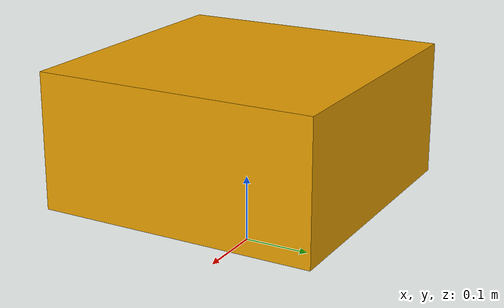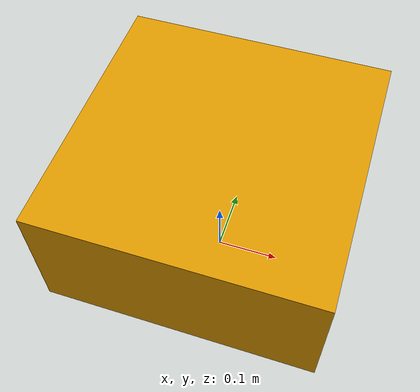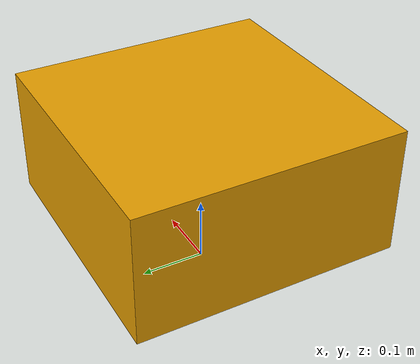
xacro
<?xml version="1.0"?>

<robot name="test"  xmlns:xacro="http://www.ros.org/wiki/xacro">
<xacro:include filename="$(find my_urdf)/urdf/joints_links.xacro"/>
<xacro:include filename="$(find my_urdf)/urdf/forklift.plugin.xacro"/>

<xacro:property name="cx" value="0.41"/>
<xacro:property name="cy" value="0.41"/>
<xacro:property name="cz" value="0.2"/>
<xacro:property name="cm" value="30"/>

<m_box name="chassis" size="${cx} ${cy} ${cz}" origin_rpy="0.0 0.0 0.0" origin_xyz="0.0 0.0 ${(cz/2)+0.081}"
        mass="${cm}"
        ixx="${cm*(cz*cz+cy*cy)/12}" ixy="0" ixz="0"
        iyy="${cm*(cx*cx+cz*cz)/12}" iyz="0"
        izz="${cm*(cy*cy+cx*cx)/12}"/>

</robot>

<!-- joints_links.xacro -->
<robot xmlns:xacro="http://www.ros.org/wiki/xacro">

 <xacro:macro name="m_joint" params="name type axis_xyz origin_rpy origin_xyz parent child limit_e limit_l limit_u limit_v">
    <joint name="${name}" type="${type}">
      <axis xyz="${axis_xyz}" />
      <limit effort="${limit_e}" lower="${limit_l}" upper="${limit_u}" velocity="${limit_v}" />
      <origin rpy="${origin_rpy}" xyz="${origin_xyz}" />
      <parent link="${parent}" />
      <child link="${child}" />
    </joint>
    </xacro:macro>

  <xacro:macro name="f_joint" params="name type origin_rpy origin_xyz parent child ">
    <joint name="${name}" type="${type}">
        <origin xyz="${origin_xyz}" rpy="${origin_rpy}"/>
        <parent link="${parent}"/>
        <child link="${child}"/>
    </joint>
  </xacro:macro>

  <xacro:macro name="c_joint" params="name type origin_rpy origin_xyz parent child axis_xyz ">
    <joint name="${name}" type="${type}">
        <axis xyz="${axis_xyz}"/>
        <origin xyz="${origin_xyz}" rpy="${origin_rpy}"/>
        <parent link="${parent}"/>
        <child link="${child}"/>
    </joint>
  </xacro:macro>

  <xacro:macro name="m_box" params="name origin_xyz origin_rpy size mass ixx ixy ixz iyy iyz izz">
    <link name="${name}">
      <inertial>
        <mass value="${mass}" />
        <origin rpy="${origin_rpy}" xyz="${origin_xyz}" />
        <inertia ixx="${ixx}" ixy="${ixy}" ixz="${ixz}" iyy="${iyy}" iyz="${iyz}" izz="${izz}" />
      </inertial>
      <collision>
        <origin rpy="${origin_rpy}" xyz="${origin_xyz}" />
        <geometry>
          <box size="${size}" />
        </geometry>
      </collision>
      <visual>
        <origin rpy="${origin_rpy}" xyz="${origin_xyz}" />
        <geometry>
          <box size="${size}" />
        </geometry>
      </visual>
    </link>
  </xacro:macro>

<xacro:macro name="m_cylinder" params="name origin_xyz origin_rpy radius length mass ixx ixy ixz iyy iyz izz">
 <link name="${name}">
      <inertial>
        <mass value="${mass}" />
        <origin rpy="${origin_rpy}" xyz="${origin_xyz}" />
        <inertia ixx="${ixx}" ixy="${ixy}" ixz="${ixz}" iyy="${iyy}" iyz="${iyz}" izz="${izz}" />
      </inertial>
      <collision>
        <origin rpy="${origin_rpy}" xyz="${origin_xyz}" />
        <geometry>
          <cylinder radius="${radius}" length="${length}" />
        </geometry>
      </collision>
      <visual>
        <origin rpy="${origin_rpy}" xyz="${origin_xyz}" />
        <geometry>
          <cylinder radius="${radius}" length="${length}" />
        </geometry>
      </visual>
    </link>
 </xacro:macro>
</robot>
